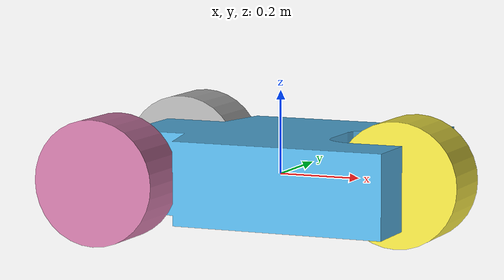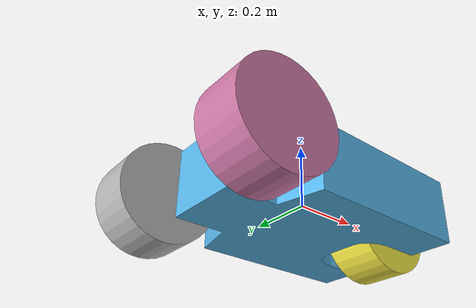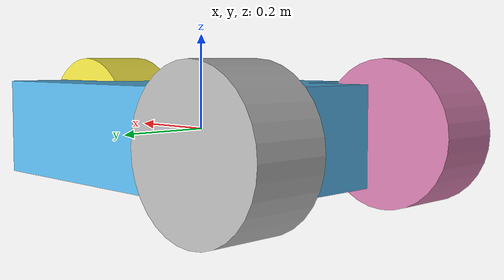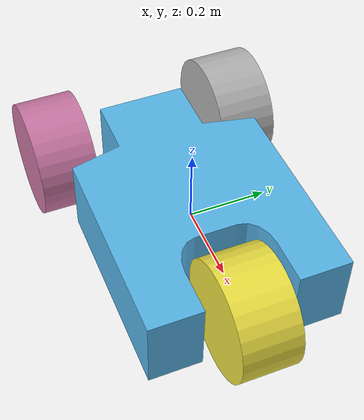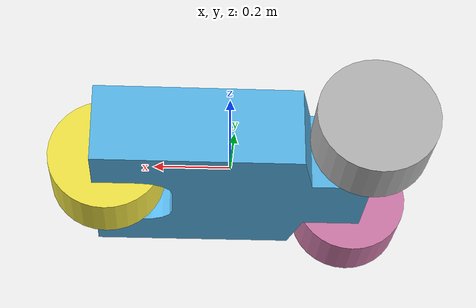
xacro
<?xml version="1.0"?>
<robot name="hal_10k" xmlns:xacro="http://www.ros.org/wiki/xacro">

    <!-- Inertia matrices -->
	<xacro:include filename="$(find hal_10k)/urdf/macros.xacro" />

    <!-- Robot constants and properties -->
	<xacro:include filename="$(find hal_10k)/urdf/hal_10k_properties.xacro" />

    <!-- Gazebo aspects of the robot -->
	<xacro:include filename="$(find hal_10k)/urdf/hal_10k_gazebo.gazebo" />

    <!-- Chassis -->
	<xacro:include filename="$(find hal_10k)/urdf/chassis.xacro" />

    <!-- Wheel Groups -->
	<xacro:include filename="$(find hal_10k)/urdf/wheels.xacro" />
    <xacro:include filename="$(find hal_10k)/urdf/back_wheel.xacro" />
    <xacro:include filename="$(find hal_10k)/urdf/front_wheel.xacro" />

    <!--Initialising urdf groups-->
    <chassis_body/>
    <front_wheel/>
    <back_wheel/>

</robot>

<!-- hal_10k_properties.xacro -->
<robot xmlns:xacro="http://www.ros.org/wiki/xacro">

	<!-- Constants -->
	<xacro:property name="PI" value="3.1415926535897931"/>

	<!-- Scaling -->
	<xacro:property name="scale_XYZ" value="1.0"/>

    <!--Chassis-->
    <xacro:property name="chassisMass" value="30.0"/>
	<xacro:property name="chassisHeight" value="0.20"/>
	<xacro:property name="chassisLength" value="0.700"/>
	<xacro:property name="chassisWidth" value="0.500"/>

    <!--Wheel-->
    <xacro:property name="wheelMass" value="2.00"/>
    <xacro:property name="wheelWidth" value="0.150"/>
	<xacro:property name="wheelRadius" value="0.150"/>

</robot>

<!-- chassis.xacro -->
<robot xmlns:xacro="http://www.ros.org/wiki/xacro">

  <xacro:macro name="chassis_body" params="">

    <!-- Used for fixing robot to Gazebo 'chassis' -->
	<link name="base_footprint" />

	<joint name="base_joint" type="fixed">
		<parent link="base_footprint"/>
		<child link="chassis"/>
	</joint>

	<link name='chassis'>

		<collision>
			<origin xyz="0 0 0"
					rpy="0 0 0"/>
			<geometry>
				<mesh filename="package://hal_10k/meshes/hal_chassis.dae" scale="${scale_XYZ} ${scale_XYZ} ${scale_XYZ}"/>
			</geometry>
		</collision>

		<visual>
			<origin xyz="0 0 0"
					rpy="0 0 0"/>
			<geometry>
				<mesh filename="package://hal_10k/meshes/hal_chassis.dae" scale="${scale_XYZ} ${scale_XYZ} ${scale_XYZ}"/>
			</geometry>
		</visual>

		<inertial>
			<origin xyz="0 0 0"
					rpy="0 0 0"/>
			<mass value="${chassisMass}"/>
			<box_inertia
				m="${chassisMass}"
				x="${chassisWidth*scale_XYZ}"
				y="${chassisLength*scale_XYZ}"
				z="${chassisHeight*scale_XYZ}"/>
		</inertial>

	</link>

  </xacro:macro>

</robot>

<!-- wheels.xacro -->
<robot xmlns:xacro="http://www.ros.org/wiki/xacro">

  <xacro:macro name="wheel" params="wheel_name wheel_conector_name tY aX aY">
    <!-- tY is Zero if left side, 1 if right side -->
    <link name='${wheel_name}'>
		<collision>
			<origin xyz="0 0 0"
					rpy="0 1.57 0"/>
			<geometry>
				<cylinder radius="${wheelRadius}" length="${wheelWidth}"/>
			</geometry>
		</collision>

		<visual>
			<origin xyz="0 0 0"
					rpy="0 0 0"/>
			<geometry>
				<mesh filename="package://hal_10k/meshes/hal_wheel.dae" scale="${scale_XYZ} ${scale_XYZ} ${scale_XYZ}"/>
			</geometry>
		</visual>

		<inertial>
			<origin xyz="0 0 0"
					rpy="0 0 0"/>
			<mass value="${wheelMass}"/>
			<cylinder_inertia
				m="${wheelMass}"
				r="${wheelRadius*scale_XYZ}"
				h="${wheelWidth*scale_XYZ}"/>
		</inertial>
	</link>

    <gazebo reference="${wheel_name}">
      <mu1 value="1.0"/>
      <mu2 value="1.0"/>
      <kp  value="10000000.0" />
      <kd>100.0</kd>
      <minDepth>0.001</minDepth>
      <maxVel>1.0</maxVel>
    </gazebo>

  	<joint name="${wheel_name}_joint" type="continuous">
		<parent link="${wheel_conector_name}"/>
		<child link="${wheel_name}"/>
		<origin xyz="0 0 0" rpy="0 0 ${tY*PI}"/>
		<limit effort="10000.0" velocity="100.0"/>
        <axis xyz="${aX} ${aY} 0"/>
        <joint_properties damping="0.0" friction="0.0"/>
	</joint>

    <transmission name="${wheel_name}_trans">
      <type>transmission_interface/SimpleTransmission</type>
      <joint name="${wheel_name}_joint">
        <hardwareInterface>hardware_interface/EffortJointInterface</hardwareInterface>
      </joint>
      <actuator name="${wheel_name}Motor">
        <hardwareInterface>hardware_interface/EffortJointInterface</hardwareInterface>
        <mechanicalReduction>1</mechanicalReduction>
      </actuator>
    </transmission>

  </xacro:macro>

</robot>

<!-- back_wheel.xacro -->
<robot xmlns:xacro="http://www.ros.org/wiki/xacro">

  <xacro:macro name="back_wheel" params="">

  	<link name="left_connector_link">
		<visual>
		    <origin xyz="0 0 0" rpy="0 0 1.57"/>
			<geometry>
				<cylinder radius="0.001" length="0.001"/>
			</geometry>
		</visual>
        <inertial>
            <inertia ixx="2.61666666667e-05" ixy="0.0" ixz="0.0" iyy="2.61666666667e-05" iyz="0.0" izz="3.6e-05"/>
            <mass value="0.0001"/>
        </inertial>
        <collision>
            <origin xyz="0 0 0" rpy="0 0 0"/>
            <geometry>
                <cylinder radius="0.001" length="0.001"/>
            </geometry>
        </collision>

	</link>

    <link name="right_connector_link">
		<visual>
		    <origin xyz="0 0 0" rpy="0 0 1.57"/>
			<geometry>
				<cylinder radius="0.001" length="0.001"/>
			</geometry>
		</visual>
        <inertial>
        <inertia ixx="2.61666666667e-05" ixy="0.0" ixz="0.0" iyy="2.61666666667e-05" iyz="0.0" izz="3.6e-05"/>
        <mass value="0.0001"/>
        </inertial>
        <collision>
            <origin xyz="0 0 0" rpy="0 0 0"/>
            <geometry>
                <cylinder radius="0.001" length="0.001"/>
            </geometry>
        </collision>
	</link>

    <joint name="left_connector_joint" type="revolute">
	<origin xyz="-0.34 ${-chassisWidth/2} 0" rpy="0 0 0"/>
        <parent link="chassis"/>
        <axis xyz="0 0 1"/>
        <child link="left_connector_link"/>
        <limit effort="1000.0" lower="-0.2" upper="0.2" velocity="0.5"/>

      </joint>

    <joint name="right_connector_joint" type="revolute">
	<origin xyz="-0.34 ${chassisWidth/2} 0" rpy="0 0 0"/>
	<axis xyz="0 0 1"/>
	<parent link="chassis"/>
        <child link="right_connector_link"/>
        <limit effort="1000.0" lower="-0.2" upper="0.2" velocity="0.5"/>

      </joint>

    <wheel
		wheel_name="left_wheel"
		wheel_conector_name="left_connector_link"
		tY="0" aX="0" aY="1"/>

  	<wheel
		wheel_name="right_wheel"
		wheel_conector_name="right_connector_link"
		tY="1" aX="0" aY="1"/>

  </xacro:macro>

</robot>

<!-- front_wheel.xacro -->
<robot xmlns:xacro="http://www.ros.org/wiki/xacro">

  <xacro:macro name="front_wheel" params="">

    <link name="front_connector_link">
		<visual>
		    <origin xyz="0 0 0" rpy="0 0 1.57"/>
			<geometry>
				<cylinder radius="0.01" length="0.01"/>
			</geometry>
		</visual>
        <inertial>
        <inertia ixx="2.61666666667e-05" ixy="0.0" ixz="0.0" iyy="2.61666666667e-05" iyz="0.0" izz="3.6e-05"/>
        <mass value="0.0001"/>
        </inertial>
        <collision>
            <origin xyz="0 0 0" rpy="0 0 0"/>
            <geometry>
                <cylinder radius="0.001" length="0.001"/>
            </geometry>
        </collision>
	</link>

    	<joint name="front_connector_joint" type="fixed">
	    <origin xyz="0.32 0 0" rpy="0 0 0"/>
	    <parent link="chassis"/>
	    <child link="front_connector_link"/>
	</joint>

    <wheel
		wheel_name="front_wheel"
		wheel_conector_name="front_connector_link"
		tY="0" aX="0" aY="1"/>

  </xacro:macro>

</robot>
